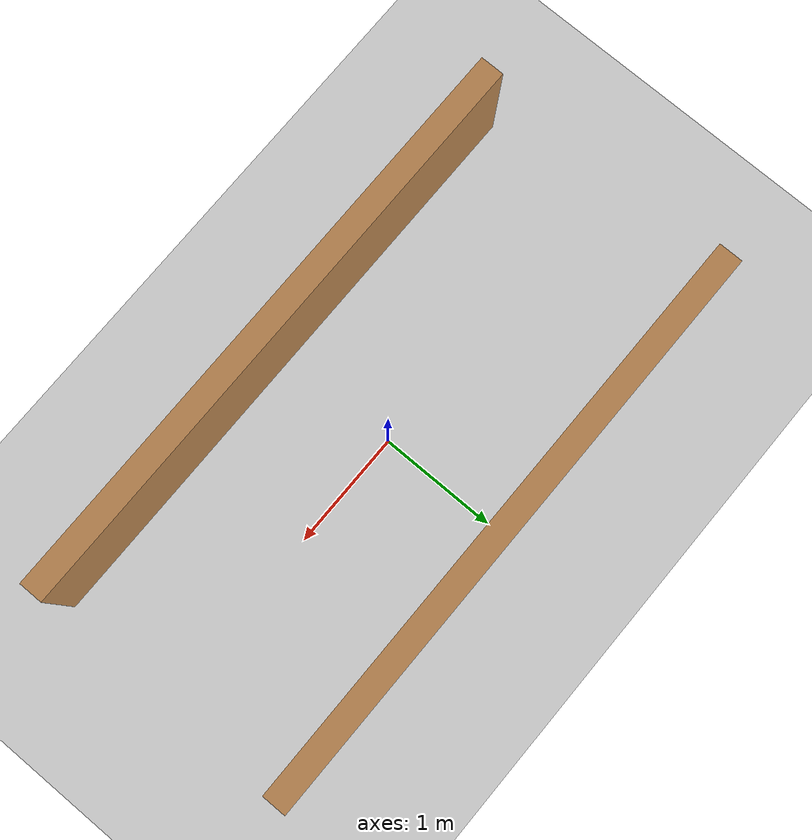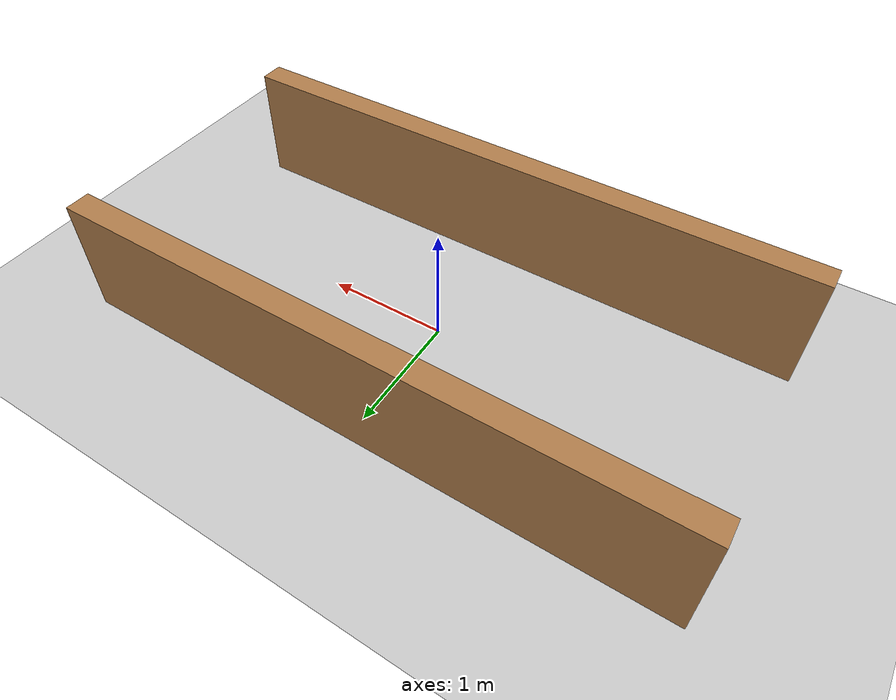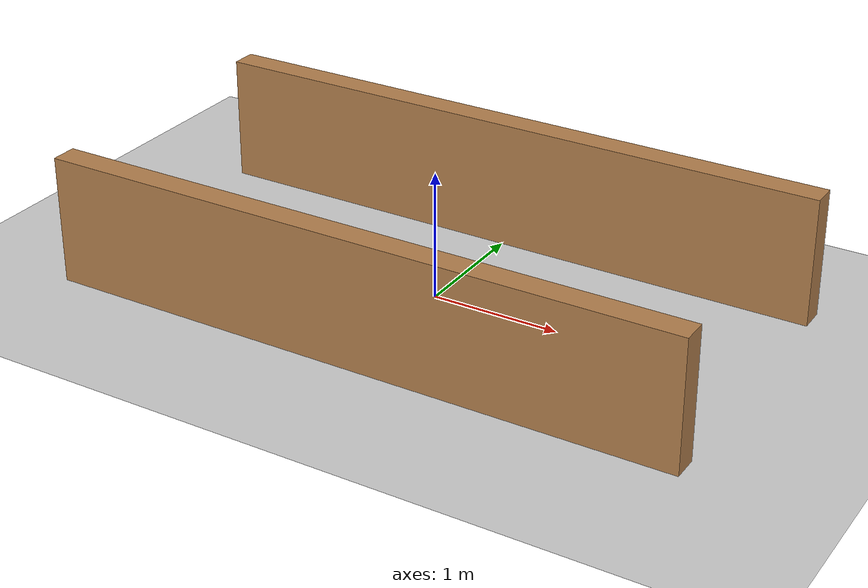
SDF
<?xml version="1.0" ?>
<sdf version="1.5">
  <world name="rubble">

<plugin name="gz::sim::systems::Physics" filename="gz-sim-physics-system"/>
    <plugin name="gz::sim::systems::UserCommands" filename="gz-sim-user-commands-system"/>
    <plugin name="gz::sim::systems::SceneBroadcaster" filename="gz-sim-scene-broadcaster-system"/>
    <plugin name="gz::sim::systems::Contact" filename="gz-sim-contact-system"/>
    <plugin name="gz::sim::systems::Imu" filename="gz-sim-imu-system"/>
    <plugin name="gz::sim::systems::AirPressure" filename="gz-sim-air-pressure-system"/>
    <plugin name="gz::sim::systems::ApplyLinkWrench" filename="gz-sim-apply-link-wrench-system"/>
    <plugin name="gz::sim::systems::NavSat" filename="gz-sim-navsat-system"/>
    <plugin name="gz::sim::systems::Sensors" filename="gz-sim-sensors-system">
      <render_engine>ogre2</render_engine>
    </plugin>
    <gui fullscreen="false">
      <!-- 3D scene -->
      <plugin filename="MinimalScene" name="3D View">
        <gz-gui>
          <title>3D View</title>
          <property type="bool" key="showTitleBar">false</property>
          <property type="string" key="state">docked</property>
        </gz-gui>
        <engine>ogre2</engine>
        <scene>scene</scene>
        <ambient_light>0.4 0.4 0.4</ambient_light>
        <background_color>0.8 0.8 0.8</background_color>
        <camera_pose>-6 0 6 0 0.5 0</camera_pose>
        <camera_clip>
          <near>0.25</near>
          <far>25000</far>
        </camera_clip>
      </plugin>
      <!-- Plugins that add functionality to the scene -->
      <plugin filename="EntityContextMenuPlugin" name="Entity context menu">
        <gz-gui>
          <property key="state" type="string">floating</property>
          <property key="width" type="double">5</property>
          <property key="height" type="double">5</property>
          <property key="showTitleBar" type="bool">false</property>
        </gz-gui>
      </plugin>
      <plugin filename="GzSceneManager" name="Scene Manager">
        <gz-gui>
          <property key="resizable" type="bool">false</property>
          <property key="width" type="double">5</property>
          <property key="height" type="double">5</property>
          <property key="state" type="string">floating</property>
          <property key="showTitleBar" type="bool">false</property>
        </gz-gui>
      </plugin>
      <plugin filename="InteractiveViewControl" name="Interactive view control">
        <gz-gui>
          <property key="resizable" type="bool">false</property>
          <property key="width" type="double">5</property>
          <property key="height" type="double">5</property>
          <property key="state" type="string">floating</property>
          <property key="showTitleBar" type="bool">false</property>
        </gz-gui>
      </plugin>
      <plugin filename="CameraTracking" name="Camera Tracking">
        <gz-gui>
          <property key="resizable" type="bool">false</property>
          <property key="width" type="double">5</property>
          <property key="height" type="double">5</property>
          <property key="state" type="string">floating</property>
          <property key="showTitleBar" type="bool">false</property>
        </gz-gui>
      </plugin>
      <plugin filename="MarkerManager" name="Marker manager">
        <gz-gui>
          <property key="resizable" type="bool">false</property>
          <property key="width" type="double">5</property>
          <property key="height" type="double">5</property>
          <property key="state" type="string">floating</property>
          <property key="showTitleBar" type="bool">false</property>
        </gz-gui>
      </plugin>
      <plugin filename="SelectEntities" name="Select Entities">
        <gz-gui>
          <anchors target="Select entities">
            <line own="right" target="right"/>
            <line own="top" target="top"/>
          </anchors>
          <property key="resizable" type="bool">false</property>
          <property key="width" type="double">5</property>
          <property key="height" type="double">5</property>
          <property key="state" type="string">floating</property>
          <property key="showTitleBar" type="bool">false</property>
        </gz-gui>
      </plugin>
      <plugin filename="VisualizationCapabilities" name="Visualization Capabilities">
        <gz-gui>
          <property key="resizable" type="bool">false</property>
          <property key="width" type="double">5</property>
          <property key="height" type="double">5</property>
          <property key="state" type="string">floating</property>
          <property key="showTitleBar" type="bool">false</property>
        </gz-gui>
      </plugin>
      <plugin filename="Spawn" name="Spawn Entities">
        <gz-gui>
          <anchors target="Select entities">
            <line own="right" target="right"/>
            <line own="top" target="top"/>
          </anchors>
          <property key="resizable" type="bool">false</property>
          <property key="width" type="double">5</property>
          <property key="height" type="double">5</property>
          <property key="state" type="string">floating</property>
          <property key="showTitleBar" type="bool">false</property>
        </gz-gui>
      </plugin>
      <plugin name="World control" filename="WorldControl">
        <gz-gui>
          <title>World control</title>
          <property type="bool" key="showTitleBar">0</property>
          <property type="bool" key="resizable">0</property>
          <property type="double" key="height">72</property>
          <property type="double" key="width">121</property>
          <property type="double" key="z">1</property>
          <property type="string" key="state">floating</property>
          <anchors target="3D View">
            <line own="left" target="left"/>
            <line own="bottom" target="bottom"/>
          </anchors>
        </gz-gui>
        <play_pause>1</play_pause>
        <step>1</step>
        <start_paused>1</start_paused>
      </plugin>
      <plugin name="World stats" filename="WorldStats">
        <gz-gui>
          <title>World stats</title>
          <property type="bool" key="showTitleBar">0</property>
          <property type="bool" key="resizable">0</property>
          <property type="double" key="height">110</property>
          <property type="double" key="width">290</property>
          <property type="double" key="z">1</property>
          <property type="string" key="state">floating</property>
          <anchors target="3D View">
            <line own="right" target="right"/>
            <line own="bottom" target="bottom"/>
          </anchors>
        </gz-gui>
        <sim_time>1</sim_time>
        <real_time>1</real_time>
        <real_time_factor>1</real_time_factor>
        <iterations>1</iterations>
      </plugin>
      <plugin name="Entity tree" filename="EntityTree"/>
    </gui>

    <include>
      <uri>model://ground_plane</uri>
    </include>
    <include>
      <uri>model://sun</uri>
    </include>
    <model name="right_wall">
      <static>true</static>
      <pose>0 -1.1 0.5 0 0 0</pose>
      <link name="link">
        <collision name="collision">
          <geometry>
            <box>
              <size>5 0.2 1.0</size>
            </box>
          </geometry>
        </collision>
        <visual name="visual">
          <geometry>
            <box>
              <size>5 0.2 1.0</size>
            </box>
          </geometry>
          <material>
            <script>
              <uri>file://media/materials/scripts/gazebo.material</uri>
              <name>Gazebo/Wood</name>
            </script>
          </material>
        </visual>
      </link>
    </model>
    <model name="left_wall">
      <static>true</static>
      <pose>0 1.1 0.5 0 0 0</pose>
      <link name="link">
        <collision name="collision">
          <geometry>
            <box>
              <size>5 0.2 1.0</size>
            </box>
          </geometry>
        </collision>
        <visual name="visual">
          <geometry>
            <box>
              <size>5 0.2 1.0</size>
            </box>
          </geometry>
          <material>
            <script>
              <uri>file://media/materials/scripts/gazebo.material</uri>
              <name>Gazebo/Wood</name>
            </script>
          </material>
        </visual>
      </link>
    </model>
  </world>
</sdf>
